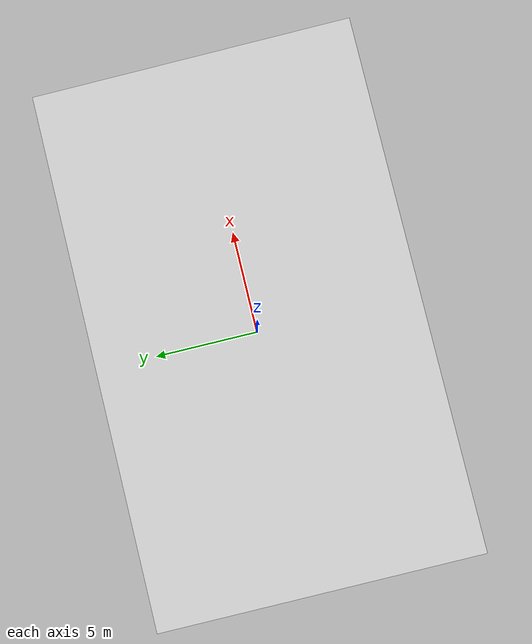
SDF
<?xml version="1.0"?>
<!--
  Environnement de test complexe : Bâtiment avec obstacles imprévus
  - Vitres de tailles variées
  - Obstacles mobiles/statiques
  - Surface de vitres irrégulières
  - Zones de saleté variable
-->
<sdf version="1.7">
<world name="complex">

  <include>
    <uri>model://sun</uri>
  </include>

  <scene>
    <ambient>0.7 0.7 0.7 1</ambient>
    <background>0.82 0.82 0.88 1</background>
    <shadows>true</shadows>
  </scene>

  <physics type="ode">
    <real_time_factor>1.0</real_time_factor>
    <real_time_update_rate>1000</real_time_update_rate>
    <max_step_size>0.001</max_step_size>
    <gravity>0 0 -9.81</gravity>
  </physics>

  <!-- Grande vitre principale -->
  <model name="main_complex_window">
    <pose>0 0 2.5 0 0 0</pose>
    <static>true</static>
    <link name="glass">
      <collision name="collision">
        <geometry>
          <box><size>5.0 4.0 0.01</size></box>
        </geometry>
        <surface>
          <friction>
            <ode><mu>0.1</mu><mu2>0.1</mu2></ode>
          </friction>
        </surface>
      </collision>
      <visual name="visual">
        <geometry>
          <box><size>5.0 4.0 0.01</size></box>
        </geometry>
        <material>
          <transparency>0.3</transparency>
          <ambient>0.9 0.9 1.0 0.5</ambient>
        </material>
      </visual>
      <inertial>
        <mass>200.0</mass>
        <inertia>
          <ixx>266.67</ixx>
          <iyy>416.67</iyy>
          <izz>683.33</izz>
        </inertia>
      </inertial>
    </link>
  </model>

  <!-- Vitre inclinée (défi supplémentaire) -->
  <model name="tilted_window">
    <pose>6 0 2.0 0 0.3 0</pose>
    <static>true</static>
    <link name="glass">
      <collision name="collision">
        <geometry>
          <box><size>2.5 2.0 0.01</size></box>
        </geometry>
        <surface>
          <friction>
            <ode><mu>0.1</mu><mu2>0.1</mu2></ode>
          </friction>
        </surface>
      </collision>
      <visual name="visual">
        <geometry>
          <box><size>2.5 2.0 0.01</size></box>
        </geometry>
        <material>
          <transparency>0.3</transparency>
          <ambient>0.9 0.9 1.0 0.5</ambient>
        </material>
      </visual>
      <inertial>
        <mass>50.0</mass>
        <inertia>
          <ixx>16.67</ixx>
          <iyy>26.04</iyy>
          <izz>42.71</izz>
        </inertia>
      </inertial>
    </link>
  </model>

  <!-- Petites vitres (défi de navigation) -->
  <model name="small_window_1">
    <pose>-6 3 1.5 0 0 0</pose>
    <static>true</static>
    <link name="glass">
      <collision name="collision">
        <geometry>
          <box><size>1.0 0.8 0.01</size></box>
        </geometry>
        <surface>
          <friction>
            <ode><mu>0.1</mu><mu2>0.1</mu2></ode>
          </friction>
        </surface>
      </collision>
      <visual name="visual">
        <geometry>
          <box><size>1.0 0.8 0.01</size></box>
        </geometry>
        <material>
          <transparency>0.3</transparency>
          <ambient>0.9 0.9 1.0 0.5</ambient>
        </material>
      </visual>
    </link>
  </model>

  <model name="small_window_2">
    <pose>-6 -3 1.5 0 0 0</pose>
    <static>true</static>
    <link name="glass">
      <collision name="collision">
        <geometry>
          <box><size>1.0 0.8 0.01</size></box>
        </geometry>
        <surface>
          <friction>
            <ode><mu>0.1</mu><mu2>0.1</mu2></ode>
          </friction>
        </surface>
      </collision>
      <visual name="visual">
        <geometry>
          <box><size>1.0 0.8 0.01</size></box>
        </geometry>
        <material>
          <transparency>0.3</transparency>
          <ambient>0.9 0.9 1.0 0.5</ambient>
        </material>
      </visual>
    </link>
  </model>

  <!-- Obstacle mobile (oiseau) -->
  <model name="bird_obstacle">
    <pose>2 1 3.0 0 0 0</pose>
    <static>false</static>
    <link name="body">
      <collision name="collision">
        <geometry>
          <sphere><radius>0.15</radius></sphere>
        </geometry>
      </collision>
      <visual name="visual">
        <geometry>
          <sphere><radius>0.15</radius></sphere>
        </geometry>
        <material>
          <ambient>0.2 0.2 0.2 1</ambient>
        </material>
      </visual>
      <inertial>
        <mass>0.1</mass>
        <inertia>
          <ixx>0.001</ixx>
          <iyy>0.001</iyy>
          <izz>0.001</izz>
        </inertia>
      </inertial>
    </link>
    <plugin name="obstacle_mover" filename="libgazebo_ros_joint_state_publisher.so"/>
  </model>

  <!-- Obstacles statiques (cadres décoratifs) -->
  <model name="decorative_frame_1">
    <pose>1.5 2.5 2.5 0 0 0</pose>
    <static>true</static>
    <link name="frame">
      <collision name="collision">
        <geometry>
          <box><size>0.2 0.2 0.05</size></box>
        </geometry>
      </collision>
      <visual name="visual">
        <geometry>
          <box><size>0.2 0.2 0.05</size></box>
        </geometry>
        <material>
          <ambient>0.5 0.3 0.2 1</ambient>
        </material>
      </visual>
    </link>
  </model>

  <model name="decorative_frame_2">
    <pose>-1.5 -2.5 2.5 0 0 0</pose>
    <static>true</static>
    <link name="frame">
      <collision name="collision">
        <geometry>
          <box><size>0.2 0.2 0.05</size></box>
        </geometry>
      </collision>
      <visual name="visual">
        <geometry>
          <box><size>0.2 0.2 0.05</size></box>
        </geometry>
        <material>
          <ambient>0.5 0.3 0.2 1</ambient>
        </material>
      </visual>
    </link>
  </model>

  <!-- Tuyau d'aération (obstacle vertical) -->
  <model name="vent_pipe">
    <pose>3.5 0 2.0 0 0 0</pose>
    <static>true</static>
    <link name="pipe">
      <collision name="collision">
        <geometry>
          <cylinder>
            <radius>0.1</radius>
            <length>1.5</length>
          </cylinder>
        </geometry>
      </collision>
      <visual name="visual">
        <geometry>
          <cylinder>
            <radius>0.1</radius>
            <length>1.5</length>
          </cylinder>
        </geometry>
        <material>
          <ambient>0.4 0.4 0.4 1</ambient>
        </material>
      </visual>
    </link>
  </model>

  <!-- Mur de support -->
  <model name="complex_wall">
    <pose>0 0 2.5 -0.05 0 0</pose>
    <static>true</static>
    <link name="wall">
      <collision name="collision">
        <geometry>
          <box><size>25 15 5</size></box>
        </geometry>
      </collision>
      <visual name="visual">
        <geometry>
          <box><size>25 15 5</size></box>
        </geometry>
        <material>
          <ambient>0.8 0.8 0.8 1</ambient>
        </material>
      </visual>
    </link>
  </model>

  <light type="directional" name="complex_light">
    <pose>0 0 8 0.4 -0.4 -1</pose>
    <diffuse>0.88 0.88 0.85 1</diffuse>
    <cast_shadows>true</cast_shadows>
  </light>

</world>
</sdf>
